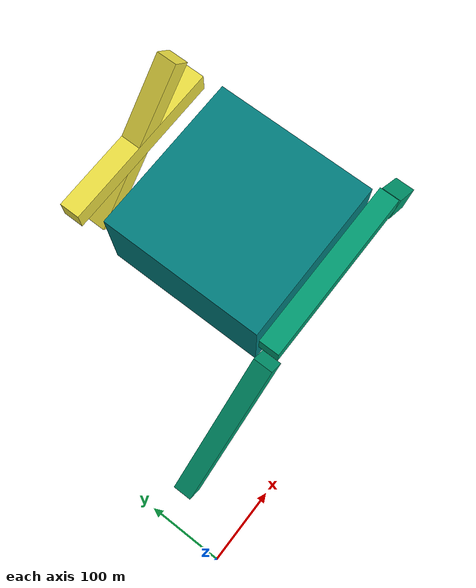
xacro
<?xml version='1.0'?>

<robot name="mark1" xmlns:xacro="http://www.ros.org/wiki/xacro">

  <!--xacro:include filename="$(find astromech_description)/urdf/materials.xacro" /-->
  <!--xacro:include filename="$(find astromech_description)/urdf/macros.xacro"/-->

<link name='world'/>

<joint name="joint_n" type="fixed">
  <origin xyz="0.0 0.0 0.7" rpy="0.0 0.0 0.0"/>
  <parent link="world"/>
  <child link="chassis"/>
</joint>

<link name='chassis'>
    <pose>299 195.4 211.8 0 0 0</pose >
<!-- estos valores no se si sirve/-->
    <inertial>
      <mass value="4"/>
      <origin xyz="299.0 195.4 211.8" rpy=" 0 0 0"/>
      <inertia
          ixx="0.0001" ixy="0" ixz="0"
          iyy="0.0001" iyz="0"
          izz="0.0001"
      />
    </inertial>

    <collision name='collision'>
      <origin xyz="299 195.4 211.8" rpy=" 0 0 0"/>
      <geometry>
        <box size="200.0 200.0 100.0"/>
      </geometry>
    </collision>

    <visual name='chassis_visual'>
      <origin xyz="299 195.4 211.8" rpy=" 0 0 0"/>
      <geometry>
        <box size="200.0 200.0 100.0"/>
      </geometry>
      <material name="orange">
        <color rgba="0 0.5 0.5 1"/>
      </material>
    </visual>
  </link>

  <joint name="joint_1" type="revolute">
    <origin xyz="5 0.0 0.0" rpy="0.0 0.0 0.0"/>
    <parent link="chassis"/>
    <child link="right_leg_rocker"/>
    <axis xyz="0.0 0.0 1.0"/>
    <limit lower="0.0" upper="0.0" effort="0.0" velocity="0.0"/>
  </joint>

  <link name="right_leg_rocker">
    <visual name="r_up_part">
      <geometry>
        <box size="219.5 25.4 25.4"/>
      </geometry>
      <origin rpy="0 0 0" xyz="308.59 82.7 211.79"/>
    </visual>
    <visual name="r_down_part">
      <geometry>
        <box size="225 25.4 25.4"/>
      </geometry>
      <origin rpy="0 -0.78 0" xyz="119.54 82.7 82.5"/>
    </visual>
    <visual name="r_front_part">
      <geometry>
        <box size="56 25.4 25.4"/>
      </geometry>
      <origin rpy="0 0.78 0" xyz="437.89 82.7 179.3"/>
    </visual>

    <inertial>
      <mass value="1"/>
      <origin rpy="0 -0.78 0" xyz="308.59 82.7 211.79"/>
      <inertia
          ixx="0.0001" ixy="0" ixz="0"
          iyy="0.0001" iyz="0"
          izz="0.0001"
      />
    </inertial>
  </link>

  <joint name="joint_2" type="revolute">
    <origin xyz="-5 0.0 0.0" rpy="0.0 0.0 0.0"/>
    <parent link="chassis"/>
    <child link="left_leg_rocker"/>
    <axis xyz="0.0 0.0 1.0"/>
    <limit lower="0.0" upper="0.0" effort="0.0" velocity="0.0"/>
  </joint>

  <link name="left_leg_rocker">
    <visual name="l_up_part">
      <geometry>
        <box size="219.5 25.4 25.4"/>
      </geometry>
      <origin rpy="0 0 0" xyz="308.59 348.1 211.79"/>
    </visual>
    <visual name="l_down_part">
      <geometry>
        <box size="219.5 25.4 25.4"/>
      </geometry>
      <origin rpy="0 -0.78 0" xyz="308.59 348.1 211.79"/>
    </visual>

    <inertial>
      <mass value="1"/>
      <origin rpy="0 -0.78 0" xyz="308.59 348.1 211.79"/>
      <inertia
          ixx="0.0001" ixy="0" ixz="0"
          iyy="0.0001" iyz="0"
          izz="0.0001"
      />
    </inertial>
  </link>

</robot>
